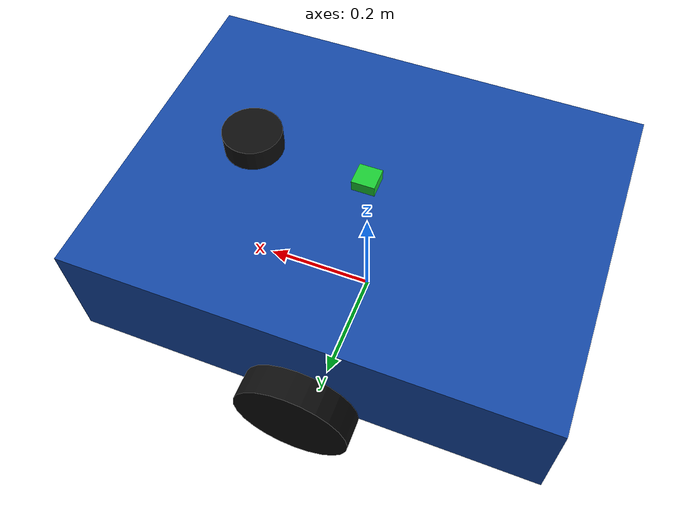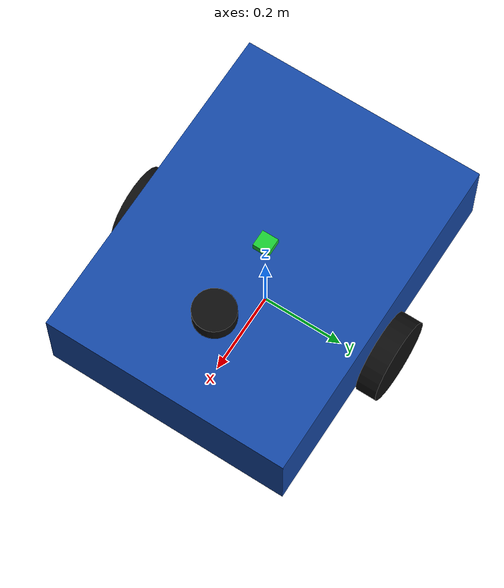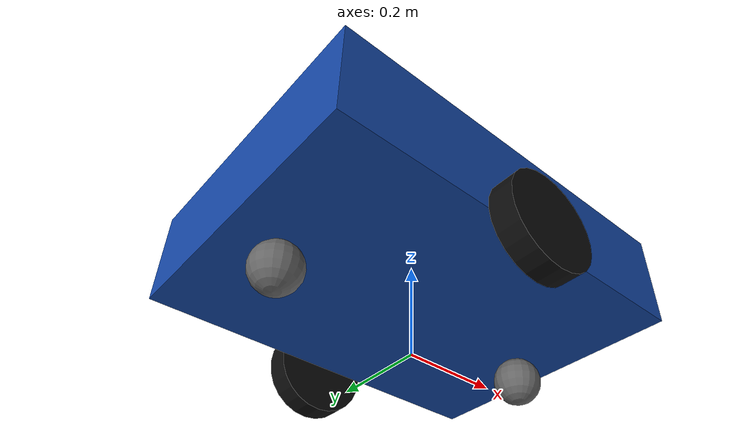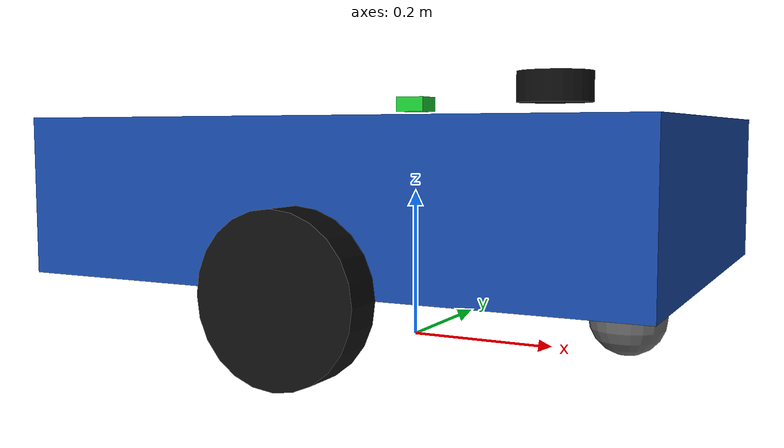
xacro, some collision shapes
<?xml version="1.0"?>

<robot xmlns:xacro="http://www.ros.org/wiki/xacro" name="wms_robot">

  <!-- ROBOT PARAMETERS                                       -->

  <xacro:property name="base_length" value="0.80"/>
  <xacro:property name="base_width" value="0.60"/>
  <xacro:property name="base_height" value="0.20"/>
  <xacro:property name="base_mass" value="50.0"/>

  <xacro:property name="wheel_radius" value="0.10"/>
  <xacro:property name="wheel_width" value="0.05"/>
  <xacro:property name="wheel_separation" value="0.65"/>
  <xacro:property name="wheel_mass" value="2.0"/>

  <xacro:property name="caster_radius" value="0.05"/>
  <xacro:property name="caster_mass" value="0.5"/>

  <xacro:property name="lidar_radius" value="0.05"/>
  <xacro:property name="lidar_height" value="0.04"/>
  <xacro:property name="lidar_mass" value="0.2"/>

  <xacro:property name="imu_mass" value="0.05"/>

  <!-- BASE FOOTPRINT                                         -->

  <link name="base_footprint"/>

  <!-- BASE LINK                                              -->

  <link name="base_link">
    <!-- Detailed STL is visual-only for now.
         The uploaded mesh appears to be exported in millimetres,
         so it is scaled to metres for ROS / Gazebo. -->
    <visual>
      <origin xyz="-0.7205 0.5220 0.6405" rpy="3.14159265359 0 0"/>
      <geometry>
        <mesh filename="package://wms_description/meshes/wms_amr.stl"
              scale="0.001 0.001 0.001"/>
      </geometry>
      <!-- STL stores geometry only, so define the display colour here. -->
      <material name="amr_blue">
        <color rgba="0.08 0.28 0.65 1.0"/>
      </material>
    </visual>

    <collision>
      <geometry>
        <box size="${base_length} ${base_width} ${base_height}"/>
      </geometry>
    </collision>

    <inertial>
      <mass value="${base_mass}"/>
      <inertia
        ixx="1.67"
        ixy="0.0"
        ixz="0.0"
        iyy="2.83"
        iyz="0.0"
        izz="4.17"/>
    </inertial>
  </link>

  <joint name="base_footprint_joint" type="fixed">
    <parent link="base_footprint"/>
    <child link="base_link"/>
    <origin xyz="0 0 0.20" rpy="0 0 0"/>
  </joint>

  <!-- LEFT DRIVE WHEEL                                       -->

  <link name="left_wheel_link">
    <visual>
      <geometry>
        <cylinder radius="${wheel_radius}" length="${wheel_width}"/>
      </geometry>
      <material name="black">
        <color rgba="0.05 0.05 0.05 1"/>
      </material>
    </visual>

    <collision>
      <geometry>
        <cylinder radius="${wheel_radius}" length="${wheel_width}"/>
      </geometry>
    </collision>

    <inertial>
      <mass value="${wheel_mass}"/>
      <inertia
        ixx="0.01"
        ixy="0.0"
        ixz="0.0"
        iyy="0.01"
        iyz="0.0"
        izz="0.01"/>
    </inertial>
  </link>

  <joint name="left_wheel_joint" type="continuous">
    <parent link="base_link"/>
    <child link="left_wheel_link"/>
    <origin xyz="0 0.325 -0.10" rpy="1.5708 0 0"/>
    <axis xyz="0 0 1"/>
  </joint>

  <!-- RIGHT DRIVE WHEEL                                      -->

  <link name="right_wheel_link">
    <visual>
      <geometry>
        <cylinder radius="${wheel_radius}" length="${wheel_width}"/>
      </geometry>
      <material name="black">
        <color rgba="0.05 0.05 0.05 1"/>
      </material>
    </visual>

    <collision>
      <geometry>
        <cylinder radius="${wheel_radius}" length="${wheel_width}"/>
      </geometry>
    </collision>

    <inertial>
      <mass value="${wheel_mass}"/>
      <inertia
        ixx="0.01"
        ixy="0.0"
        ixz="0.0"
        iyy="0.01"
        iyz="0.0"
        izz="0.01"/>
    </inertial>
  </link>

  <joint name="right_wheel_joint" type="continuous">
    <parent link="base_link"/>
    <child link="right_wheel_link"/>
    <origin xyz="0 -0.325 -0.10" rpy="1.5708 0 0"/>
    <axis xyz="0 0 1"/>
  </joint>

  <!-- FRONT CASTER                                           -->

  <link name="front_caster_link">
    <visual>
      <geometry>
        <sphere radius="${caster_radius}"/>
      </geometry>
      <material name="caster_gray">
        <color rgba="0.4 0.4 0.4 1"/>
      </material>
    </visual>

    <collision>
      <geometry>
        <sphere radius="${caster_radius}"/>
      </geometry>
    </collision>

    <inertial>
      <mass value="${caster_mass}"/>
      <inertia
        ixx="0.001"
        ixy="0.0"
        ixz="0.0"
        iyy="0.001"
        iyz="0.0"
        izz="0.001"/>
    </inertial>
  </link>

  <joint name="front_caster_joint" type="fixed">
    <parent link="base_link"/>
    <child link="front_caster_link"/>
    <origin xyz="0.30 0 -0.15" rpy="0 0 0"/>
  </joint>

  <!-- REAR CASTER                                            -->

  <link name="rear_caster_link">
    <visual>
      <geometry>
        <sphere radius="${caster_radius}"/>
      </geometry>
      <material name="caster_gray">
        <color rgba="0.4 0.4 0.4 1"/>
      </material>
    </visual>

    <collision>
      <geometry>
        <sphere radius="${caster_radius}"/>
      </geometry>
    </collision>

    <inertial>
      <mass value="${caster_mass}"/>
      <inertia
        ixx="0.001"
        ixy="0.0"
        ixz="0.0"
        iyy="0.001"
        iyz="0.0"
        izz="0.001"/>
    </inertial>
  </link>

  <joint name="rear_caster_joint" type="fixed">
    <parent link="base_link"/>
    <child link="rear_caster_link"/>
    <origin xyz="-0.30 0 -0.15" rpy="0 0 0"/>
  </joint>

  <!-- LIDAR                                                  -->

  <link name="lidar_link">
    <visual>
      <geometry>
        <cylinder radius="${lidar_radius}" length="${lidar_height}"/>
      </geometry>
      <material name="lidar_black">
        <color rgba="0.05 0.05 0.05 1"/>
      </material>
    </visual>

    <collision>
      <geometry>
        <cylinder radius="${lidar_radius}" length="${lidar_height}"/>
      </geometry>
    </collision>

    <inertial>
      <mass value="${lidar_mass}"/>
      <inertia
        ixx="0.0001"
        ixy="0.0"
        ixz="0.0"
        iyy="0.0001"
        iyz="0.0"
        izz="0.0001"/>
    </inertial>
  </link>

  <joint name="lidar_joint" type="fixed">
    <parent link="base_link"/>
    <child link="lidar_link"/>
    <origin xyz="0.20 0 0.14" rpy="0 0 0"/>
  </joint>

  <!-- IMU                                                    -->

  <link name="imu_link">
    <visual>
      <geometry>
        <box size="0.04 0.04 0.02"/>
      </geometry>
      <material name="imu_green">
        <color rgba="0.1 0.8 0.2 1"/>
      </material>
    </visual>

    <collision>
      <geometry>
        <box size="0.04 0.04 0.02"/>
      </geometry>
    </collision>

    <inertial>
      <mass value="${imu_mass}"/>
      <inertia
        ixx="0.00001"
        ixy="0.0"
        ixz="0.0"
        iyy="0.00001"
        iyz="0.0"
        izz="0.00001"/>
    </inertial>
  </link>

  <joint name="imu_joint" type="fixed">
    <parent link="base_link"/>
    <child link="imu_link"/>
    <origin xyz="0 0 0.12" rpy="0 0 0"/>
  </joint>

  <!-- GAZEBO DISPLAY MATERIALS                               -->

  <!-- Gazebo Sim solid-colour overrides. The STL itself does not
       contain portable material / texture data. -->
  <gazebo reference="base_link">
    <material>Gazebo/Blue</material>
  </gazebo>

  <gazebo reference="left_wheel_link">
    <material>Gazebo/Black</material>
  </gazebo>

  <gazebo reference="right_wheel_link">
    <material>Gazebo/Black</material>
  </gazebo>

  <gazebo reference="front_caster_link">
    <material>Gazebo/Grey</material>
  </gazebo>

  <gazebo reference="rear_caster_link">
    <material>Gazebo/Grey</material>
  </gazebo>

  <gazebo reference="lidar_link">
    <material>Gazebo/Black</material>
  </gazebo>

  <gazebo reference="imu_link">
    <material>Gazebo/Green</material>
  </gazebo>

  <!-- GAZEBO DIFFERENTIAL DRIVE                              -->

  <gazebo>
    <plugin filename="gz-sim-diff-drive-system"
            name="gz::sim::systems::DiffDrive">
      <left_joint>left_wheel_joint</left_joint>
      <right_joint>right_wheel_joint</right_joint>

      <wheel_separation>${wheel_separation}</wheel_separation>
      <wheel_radius>${wheel_radius}</wheel_radius>

      <topic>/cmd_vel</topic>
      <odom_topic>/odom_raw</odom_topic>

      <frame_id>odom</frame_id>
      <child_frame_id>base_footprint</child_frame_id>

      <odom_publish_frequency>50</odom_publish_frequency>
    </plugin>
  </gazebo>

  <!-- GAZEBO JOINT STATE PUBLISHER                           -->

  <gazebo>
    <plugin filename="gz-sim-joint-state-publisher-system"
            name="gz::sim::systems::JointStatePublisher">
      <joint_name>left_wheel_joint</joint_name>
      <joint_name>right_wheel_joint</joint_name>
      <topic>/joint_states</topic>
    </plugin>
  </gazebo>

  <!-- GAZEBO LIDAR SENSOR                                    -->

  <gazebo reference="lidar_link">
    <sensor name="lidar_sensor" type="gpu_lidar">
      <pose>0 0 0 0 0 0</pose>
      <topic>/scan</topic>
      <update_rate>10</update_rate>
      <always_on>true</always_on>
      <visualize>true</visualize>

      <lidar>
        <scan>
          <horizontal>
            <samples>720</samples>
            <resolution>1</resolution>
            <min_angle>-3.14159265</min_angle>
            <max_angle>3.14159265</max_angle>
          </horizontal>
        </scan>

        <range>
          <min>0.10</min>
          <max>10.0</max>
          <resolution>0.01</resolution>
        </range>
      </lidar>
    </sensor>
  </gazebo>

  <!-- GAZEBO IMU SENSOR                                      -->

  <gazebo reference="imu_link">
    <sensor name="imu_sensor" type="imu">
      <always_on>true</always_on>
      <update_rate>100</update_rate>
      <topic>/imu/data</topic>
      <visualize>false</visualize>
    </sensor>
  </gazebo>

</robot>
